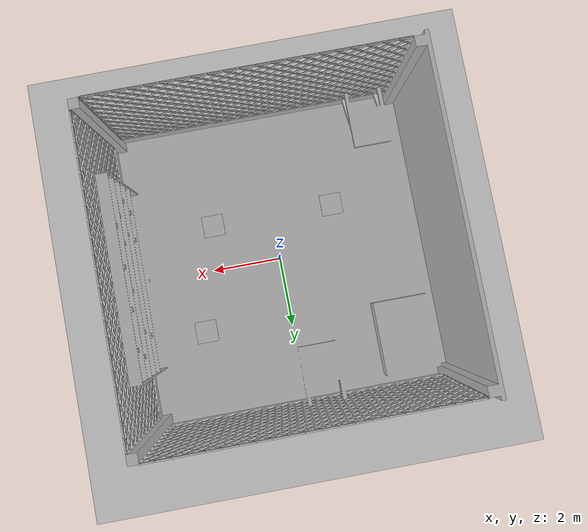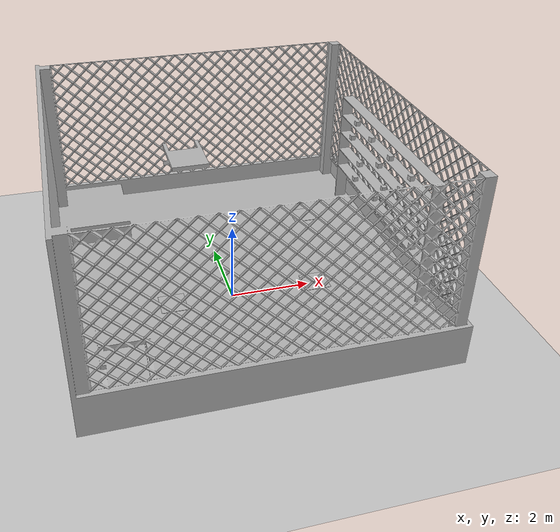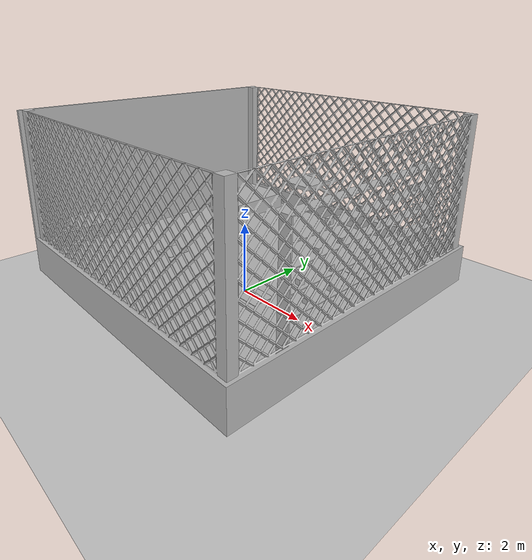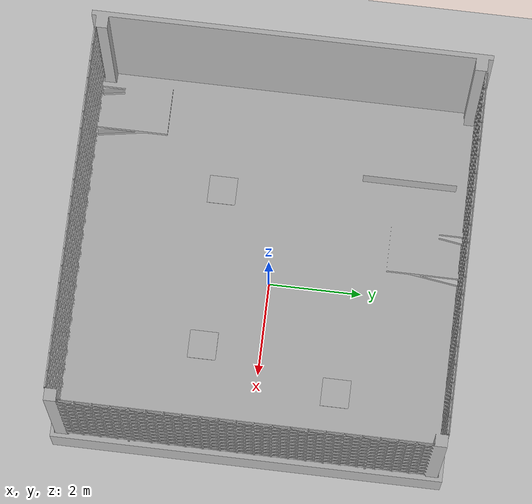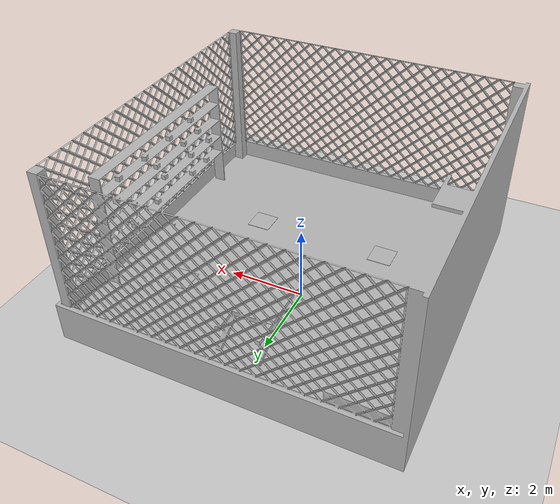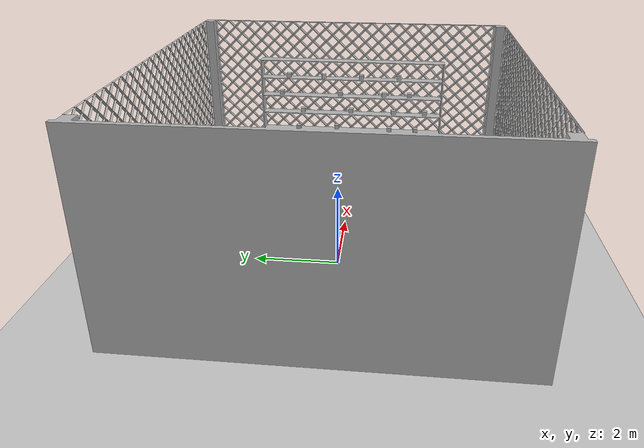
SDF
<sdf version="1.5">
 <world name="default">
  <physics type="ode">
   <ode>
    <solver><type>quick</type><iters>100</iters><sor>1.0</sor></solver>
    <constraints>
     <cfm>0.0</cfm>
     <erp>0.9</erp>
     <contact_max_correcting_vel>0.1</contact_max_correcting_vel>
     <contact_surface_layer>0.0</contact_surface_layer>
    </constraints>
   </ode>
   <real_time_update_rate>1000</real_time_update_rate>
   <max_step_size>0.0010</max_step_size>
  </physics>
  <scene>
   <sky><clouds><speed>12</speed></clouds></sky>
   <ambient>0.4 0.4 0.4 1</ambient>
   <background>0.25 0.25 0.25 1</background>
  </scene>
  <model name="ground_plane">
   <static>true</static>
   <link name="link">
    <collision name="collision">
     <geometry><plane><normal>0 0 1</normal><size>5000 5000</size></plane></geometry>
     <surface><friction><ode><mu>1</mu><mu2>1</mu2></ode></friction></surface>
    </collision>
    <visual name="runway">
     <pose>000 0 0.005 0 0 0</pose>
     <cast_shadows>false</cast_shadows>
     <geometry><plane><normal>0 0 1</normal><size>1829 45</size></plane></geometry>
     <material>
      <script><uri>file://media/materials/scripts/gazebo.material</uri><name>Gazebo/Runway</name></script>
     </material>
    </visual>
    <visual name="grass">
     <pose>0 0 -0.1 0 0 0</pose>
     <cast_shadows>false</cast_shadows>
     <geometry><plane><normal>0 0 1</normal><size>5000 5000</size></plane></geometry>
     <material>
      <script><uri>file://media/materials/scripts/gazebo.material</uri><name>Gazebo/Grass</name></script>
     </material>
    </visual>
   </link>
  </model>
  <include><uri>model://sun</uri></include>
  <include><uri>model://../models/arena</uri><pose>0 0 1 0 0 0</pose></include>
  <include><name>land_1</name><uri>model://../models/landing_pad</uri><pose>-1.7 -1.2 1 0 0 0</pose></include>
  <include><name>land_2</name><uri>model://../models/landing_pad</uri><pose>2.4 1.7 1 0 0 0</pose></include>
  <include><name>land_3</name><uri>model://../models/landing_pad</uri><pose>1.7 -1.2 1 0 0 0</pose></include>
 </world>
</sdf>

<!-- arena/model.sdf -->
<sdf version="1.6">
    <model name="arena">
        <static>true</static>
        <link name="link">
            <collision name="collision">
                <geometry>
                    <mesh>
                        <scale>1 1 1</scale>
                        <uri>//arena/meshes/arena.dae</uri>
                    </mesh>
                    <surface>
                        <friction>
                            <ode>
                                <mu>1.2</mu>
                                <mu2>1.2</mu2>
                            </ode>
                        </friction>
                    </surface>
                </geometry>
            </collision>
            <visual name="visual">
                <geometry>
                    <mesh>
                        <scale>1 1 1</scale>
                        <uri>model://arena/meshes/arena.dae</uri>
                    </mesh>
                </geometry>
            </visual>
        </link>
    </model>
</sdf>

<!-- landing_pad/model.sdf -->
<sdf version="1.5">
  <model name="landing_pad">
    <pose>5.0 0 0.01 0 0 0</pose>
    <static>true</static>
    <link name="link">
      <inertial>
        <mass>0.5</mass>
        <inertia>
          <ixx>0.001</ixx>
          <ixy>0</ixy>
          <ixz>0</ixz>
          <iyy>0.001</iyy>
          <iyz>0</iyz>
          <izz>0.001</izz>
        </inertia>
      </inertial>
      <collision name="collision">
        <geometry>
          <box>
            <size>0.6 0.6 0.02</size>
          </box>
        </geometry>
      </collision>
      <visual name="visual">
        <geometry>
          <box>
            <size>0.6 0.6 0.02</size>
          </box>
        </geometry>
        <material>
          <script>
            <uri>model://landing_pad/materials/scripts</uri>
	          <uri>model://landing_pad/materials/textures</uri>
            <name>Cube/landing_pad</name>
          </script>
        </material>
      </visual>
    </link>
  </model>
</sdf>
